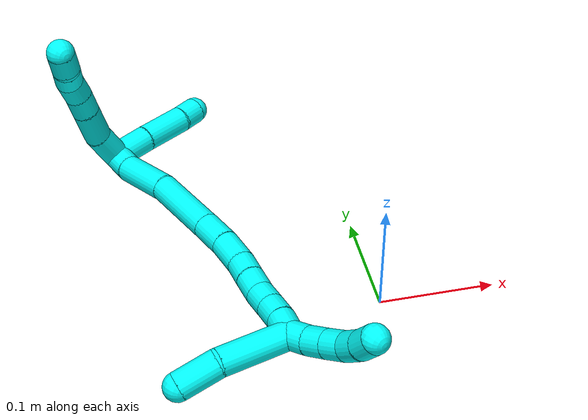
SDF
<sdf version="1.7">
 <world name="default">
  <model name="3">
   <static>0</static>
   <link name="3">
    <collision name="collision-cylinder-e_1_2_8">
     <pose>0.003912 -0.016648 0.000331 1.55092 0.230751 0.226249</pose>
     <geometry><cylinder><radius>0.0125</radius><length>0.03421</length></cylinder></geometry>
     <surface>
      <friction><ode><mu>1.16</mu><mu2>1.16</mu2><slip1>0</slip1><slip2>0</slip2></ode></friction>
      <contact><ode><kp>1e+06</kp><kd>1</kd><max_vel>0</max_vel><min_depth>0.001</min_depth></ode></contact>
     </surface>
    </collision>
    <visual name="visual-cylinder-e_1_2_8">
     <pose>0.003912 -0.016648 0.000331 1.55092 0.230751 0.226249</pose>
     <geometry><cylinder><radius>0.0125</radius><length>0.03421</length></cylinder></geometry>
     <material><ambient>0.003922 1 0.996078 1</ambient></material>
    </visual>
    <collision name="collision-cylinder-e_2_8_9">
     <pose>0.015133 -0.048801 -0.001003 1.67778 0.43831 0.486065</pose>
     <geometry><cylinder><radius>0.0125</radius><length>0.034443</length></cylinder></geometry>
     <surface>
      <friction><ode><mu>1.16</mu><mu2>1.16</mu2><slip1>0</slip1><slip2>0</slip2></ode></friction>
      <contact><ode><kp>1e+06</kp><kd>1</kd><max_vel>0</max_vel><min_depth>0.001</min_depth></ode></contact>
     </surface>
    </collision>
    <visual name="visual-cylinder-e_2_8_9">
     <pose>0.015133 -0.048801 -0.001003 1.67778 0.43831 0.486065</pose>
     <geometry><cylinder><radius>0.0125</radius><length>0.034443</length></cylinder></geometry>
     <material><ambient>0.003922 1 0.996078 1</ambient></material>
    </visual>
    <collision name="collision-cylinder-e_3_9_10">
     <pose>0.026951 -0.073304 -0.003239 1.6341 0.463643 0.492787</pose>
     <geometry><cylinder><radius>0.0125</radius><length>0.020163</length></cylinder></geometry>
     <surface>
      <friction><ode><mu>1.16</mu><mu2>1.16</mu2><slip1>0</slip1><slip2>0</slip2></ode></friction>
      <contact><ode><kp>1e+06</kp><kd>1</kd><max_vel>0</max_vel><min_depth>0.001</min_depth></ode></contact>
     </surface>
    </collision>
    <visual name="visual-cylinder-e_3_9_10">
     <pose>0.026951 -0.073304 -0.003239 1.6341 0.463643 0.492787</pose>
     <geometry><cylinder><radius>0.0125</radius><length>0.020163</length></cylinder></geometry>
     <material><ambient>0.003922 1 0.996078 1</ambient></material>
    </visual>
    <collision name="collision-cylinder-e_4_10_11">
     <pose>0.034941 -0.091816 -0.005056 1.70108 0.348115 0.395519</pose>
     <geometry><cylinder><radius>0.0125</radius><length>0.020413</length></cylinder></geometry>
     <surface>
      <friction><ode><mu>1.16</mu><mu2>1.16</mu2><slip1>0</slip1><slip2>0</slip2></ode></friction>
      <contact><ode><kp>1e+06</kp><kd>1</kd><max_vel>0</max_vel><min_depth>0.001</min_depth></ode></contact>
     </surface>
    </collision>
    <visual name="visual-cylinder-e_4_10_11">
     <pose>0.034941 -0.091816 -0.005056 1.70108 0.348115 0.395519</pose>
     <geometry><cylinder><radius>0.0125</radius><length>0.020413</length></cylinder></geometry>
     <material><ambient>0.003922 1 0.996078 1</ambient></material>
    </visual>
    <collision name="collision-cylinder-e_5_11_12">
     <pose>0.042161 -0.109577 -0.010735 2.06397 0.379828 0.622229</pose>
     <geometry><cylinder><radius>0.0125</radius><length>0.020165</length></cylinder></geometry>
     <surface>
      <friction><ode><mu>1.16</mu><mu2>1.16</mu2><slip1>0</slip1><slip2>0</slip2></ode></friction>
      <contact><ode><kp>1e+06</kp><kd>1</kd><max_vel>0</max_vel><min_depth>0.001</min_depth></ode></contact>
     </surface>
    </collision>
    <visual name="visual-cylinder-e_5_11_12">
     <pose>0.042161 -0.109577 -0.010735 2.06397 0.379828 0.622229</pose>
     <geometry><cylinder><radius>0.0125</radius><length>0.020165</length></cylinder></geometry>
     <material><ambient>0.003922 1 0.996078 1</ambient></material>
    </visual>
    <collision name="collision-cylinder-e_6_12_6">
     <pose>0.050859 -0.126644 -0.017116 1.78817 0.50224 0.618278</pose>
     <geometry><cylinder><radius>0.0125</radius><length>0.020606</length></cylinder></geometry>
     <surface>
      <friction><ode><mu>1.16</mu><mu2>1.16</mu2><slip1>0</slip1><slip2>0</slip2></ode></friction>
      <contact><ode><kp>1e+06</kp><kd>1</kd><max_vel>0</max_vel><min_depth>0.001</min_depth></ode></contact>
     </surface>
    </collision>
    <visual name="visual-cylinder-e_6_12_6">
     <pose>0.050859 -0.126644 -0.017116 1.78817 0.50224 0.618278</pose>
     <geometry><cylinder><radius>0.0125</radius><length>0.020606</length></cylinder></geometry>
     <material><ambient>0.003922 1 0.996078 1</ambient></material>
    </visual>
    <collision name="collision-cylinder-e_1_2_13">
     <pose>0.013621 0.010874 0.00145 -1.43821 0.892773 -0.793577</pose>
     <geometry><cylinder><radius>0.0125</radius><length>0.034979</length></cylinder></geometry>
     <surface>
      <friction><ode><mu>1.16</mu><mu2>1.16</mu2><slip1>0</slip1><slip2>0</slip2></ode></friction>
      <contact><ode><kp>1e+06</kp><kd>1</kd><max_vel>0</max_vel><min_depth>0.001</min_depth></ode></contact>
     </surface>
    </collision>
    <visual name="visual-cylinder-e_1_2_13">
     <pose>0.013621 0.010874 0.00145 -1.43821 0.892773 -0.793577</pose>
     <geometry><cylinder><radius>0.0125</radius><length>0.034979</length></cylinder></geometry>
     <material><ambient>0.003922 1 0.996078 1</ambient></material>
    </visual>
    <collision name="collision-cylinder-e_2_13_14">
     <pose>0.043814 0.03647 0.005174 -1.41761 0.838594 -0.730123</pose>
     <geometry><cylinder><radius>0.0125</radius><length>0.044567</length></cylinder></geometry>
     <surface>
      <friction><ode><mu>1.16</mu><mu2>1.16</mu2><slip1>0</slip1><slip2>0</slip2></ode></friction>
      <contact><ode><kp>1e+06</kp><kd>1</kd><max_vel>0</max_vel><min_depth>0.001</min_depth></ode></contact>
     </surface>
    </collision>
    <visual name="visual-cylinder-e_2_13_14">
     <pose>0.043814 0.03647 0.005174 -1.41761 0.838594 -0.730123</pose>
     <geometry><cylinder><radius>0.0125</radius><length>0.044567</length></cylinder></geometry>
     <material><ambient>0.003922 1 0.996078 1</ambient></material>
    </visual>
    <collision name="collision-cylinder-e_3_14_5">
     <pose>0.067693 0.057989 0.009688 -1.25228 0.795777 -0.590196</pose>
     <geometry><cylinder><radius>0.0125</radius><length>0.020454</length></cylinder></geometry>
     <surface>
      <friction><ode><mu>1.16</mu><mu2>1.16</mu2><slip1>0</slip1><slip2>0</slip2></ode></friction>
      <contact><ode><kp>1e+06</kp><kd>1</kd><max_vel>0</max_vel><min_depth>0.001</min_depth></ode></contact>
     </surface>
    </collision>
    <visual name="visual-cylinder-e_3_14_5">
     <pose>0.067693 0.057989 0.009688 -1.25228 0.795777 -0.590196</pose>
     <geometry><cylinder><radius>0.0125</radius><length>0.020454</length></cylinder></geometry>
     <material><ambient>0.003922 1 0.996078 1</ambient></material>
    </visual>
    <collision name="collision-cylinder-e_1_2_15">
     <pose>-0.001431 0.000303 -0.01174 -3.11579 -0.121261 2.72269</pose>
     <geometry><cylinder><radius>0.0125</radius><length>0.023662</length></cylinder></geometry>
     <surface>
      <friction><ode><mu>1.16</mu><mu2>1.16</mu2><slip1>0</slip1><slip2>0</slip2></ode></friction>
      <contact><ode><kp>1e+06</kp><kd>1</kd><max_vel>0</max_vel><min_depth>0.001</min_depth></ode></contact>
     </surface>
    </collision>
    <visual name="visual-cylinder-e_1_2_15">
     <pose>-0.001431 0.000303 -0.01174 -3.11579 -0.121261 2.72269</pose>
     <geometry><cylinder><radius>0.0125</radius><length>0.023662</length></cylinder></geometry>
     <material><ambient>0.003922 1 0.996078 1</ambient></material>
    </visual>
    <collision name="collision-cylinder-e_2_15_16">
     <pose>-0.00054 0.001535 -0.049166 -3.10545 0.090116 -2.37909</pose>
     <geometry><cylinder><radius>0.0125</radius><length>0.051614</length></cylinder></geometry>
     <surface>
      <friction><ode><mu>1.16</mu><mu2>1.16</mu2><slip1>0</slip1><slip2>0</slip2></ode></friction>
      <contact><ode><kp>1e+06</kp><kd>1</kd><max_vel>0</max_vel><min_depth>0.001</min_depth></ode></contact>
     </surface>
    </collision>
    <visual name="visual-cylinder-e_2_15_16">
     <pose>-0.00054 0.001535 -0.049166 -3.10545 0.090116 -2.37909</pose>
     <geometry><cylinder><radius>0.0125</radius><length>0.051614</length></cylinder></geometry>
     <material><ambient>0.003922 1 0.996078 1</ambient></material>
    </visual>
    <collision name="collision-cylinder-e_3_16_17">
     <pose>-0.000941 0.003971 -0.108325 -3.0966 -0.081115 2.129</pose>
     <geometry><cylinder><radius>0.0125</radius><length>0.067235</length></cylinder></geometry>
     <surface>
      <friction><ode><mu>1.16</mu><mu2>1.16</mu2><slip1>0</slip1><slip2>0</slip2></ode></friction>
      <contact><ode><kp>1e+06</kp><kd>1</kd><max_vel>0</max_vel><min_depth>0.001</min_depth></ode></contact>
     </surface>
    </collision>
    <visual name="visual-cylinder-e_3_16_17">
     <pose>-0.000941 0.003971 -0.108325 -3.0966 -0.081115 2.129</pose>
     <geometry><cylinder><radius>0.0125</radius><length>0.067235</length></cylinder></geometry>
     <material><ambient>0.003922 1 0.996078 1</ambient></material>
    </visual>
    <collision name="collision-cylinder-e_4_17_18">
     <pose>-0.005013 0.006076 -0.15596 -3.09943 -0.094834 2.30526</pose>
     <geometry><cylinder><radius>0.0125</radius><length>0.028477</length></cylinder></geometry>
     <surface>
      <friction><ode><mu>1.16</mu><mu2>1.16</mu2><slip1>0</slip1><slip2>0</slip2></ode></friction>
      <contact><ode><kp>1e+06</kp><kd>1</kd><max_vel>0</max_vel><min_depth>0.001</min_depth></ode></contact>
     </surface>
    </collision>
    <visual name="visual-cylinder-e_4_17_18">
     <pose>-0.005013 0.006076 -0.15596 -3.09943 -0.094834 2.30526</pose>
     <geometry><cylinder><radius>0.0125</radius><length>0.028477</length></cylinder></geometry>
     <material><ambient>0.003922 1 0.996078 1</ambient></material>
    </visual>
    <collision name="collision-cylinder-e_5_18_19">
     <pose>-0.00906 0.007101 -0.183834 -3.1104 -0.194174 2.82402</pose>
     <geometry><cylinder><radius>0.0125</radius><length>0.027964</length></cylinder></geometry>
     <surface>
      <friction><ode><mu>1.16</mu><mu2>1.16</mu2><slip1>0</slip1><slip2>0</slip2></ode></friction>
      <contact><ode><kp>1e+06</kp><kd>1</kd><max_vel>0</max_vel><min_depth>0.001</min_depth></ode></contact>
     </surface>
    </collision>
    <visual name="visual-cylinder-e_5_18_19">
     <pose>-0.00906 0.007101 -0.183834 -3.1104 -0.194174 2.82402</pose>
     <geometry><cylinder><radius>0.0125</radius><length>0.027964</length></cylinder></geometry>
     <material><ambient>0.003922 1 0.996078 1</ambient></material>
    </visual>
    <collision name="collision-cylinder-e_6_19_20">
     <pose>-0.014361 0.006246 -0.207497 3.01343 -0.253903 -2.20989</pose>
     <geometry><cylinder><radius>0.0125</radius><length>0.020731</length></cylinder></geometry>
     <surface>
      <friction><ode><mu>1.16</mu><mu2>1.16</mu2><slip1>0</slip1><slip2>0</slip2></ode></friction>
      <contact><ode><kp>1e+06</kp><kd>1</kd><max_vel>0</max_vel><min_depth>0.001</min_depth></ode></contact>
     </surface>
    </collision>
    <visual name="visual-cylinder-e_6_19_20">
     <pose>-0.014361 0.006246 -0.207497 3.01343 -0.253903 -2.20989</pose>
     <geometry><cylinder><radius>0.0125</radius><length>0.020731</length></cylinder></geometry>
     <material><ambient>0.003922 1 0.996078 1</ambient></material>
    </visual>
    <collision name="collision-cylinder-e_7_20_21">
     <pose>-0.019648 0.004461 -0.227137 3.08975 -0.269802 -2.76409</pose>
     <geometry><cylinder><radius>0.0125</radius><length>0.020131</length></cylinder></geometry>
     <surface>
      <friction><ode><mu>1.16</mu><mu2>1.16</mu2><slip1>0</slip1><slip2>0</slip2></ode></friction>
      <contact><ode><kp>1e+06</kp><kd>1</kd><max_vel>0</max_vel><min_depth>0.001</min_depth></ode></contact>
     </surface>
    </collision>
    <visual name="visual-cylinder-e_7_20_21">
     <pose>-0.019648 0.004461 -0.227137 3.08975 -0.269802 -2.76409</pose>
     <geometry><cylinder><radius>0.0125</radius><length>0.020131</length></cylinder></geometry>
     <material><ambient>0.003922 1 0.996078 1</ambient></material>
    </visual>
    <collision name="collision-cylinder-e_8_21_22">
     <pose>-0.02368 0.002449 -0.246682 2.98962 -0.134518 -1.44865</pose>
     <geometry><cylinder><radius>0.0125</radius><length>0.020125</length></cylinder></geometry>
     <surface>
      <friction><ode><mu>1.16</mu><mu2>1.16</mu2><slip1>0</slip1><slip2>0</slip2></ode></friction>
      <contact><ode><kp>1e+06</kp><kd>1</kd><max_vel>0</max_vel><min_depth>0.001</min_depth></ode></contact>
     </surface>
    </collision>
    <visual name="visual-cylinder-e_8_21_22">
     <pose>-0.02368 0.002449 -0.246682 2.98962 -0.134518 -1.44865</pose>
     <geometry><cylinder><radius>0.0125</radius><length>0.020125</length></cylinder></geometry>
     <material><ambient>0.003922 1 0.996078 1</ambient></material>
    </visual>
    <collision name="collision-cylinder-e_9_22_23">
     <pose>-0.02633 -0.001019 -0.266283 2.94324 -0.130075 -1.15913</pose>
     <geometry><cylinder><radius>0.0125</radius><length>0.020049</length></cylinder></geometry>
     <surface>
      <friction><ode><mu>1.16</mu><mu2>1.16</mu2><slip1>0</slip1><slip2>0</slip2></ode></friction>
      <contact><ode><kp>1e+06</kp><kd>1</kd><max_vel>0</max_vel><min_depth>0.001</min_depth></ode></contact>
     </surface>
    </collision>
    <visual name="visual-cylinder-e_9_22_23">
     <pose>-0.02633 -0.001019 -0.266283 2.94324 -0.130075 -1.15913</pose>
     <geometry><cylinder><radius>0.0125</radius><length>0.020049</length></cylinder></geometry>
     <material><ambient>0.003922 1 0.996078 1</ambient></material>
    </visual>
    <collision name="collision-cylinder-e_10_23_1">
     <pose>-0.030093 -0.005151 -0.28548 2.91566 -0.248676 -1.66746</pose>
     <geometry><cylinder><radius>0.0125</radius><length>0.020012</length></cylinder></geometry>
     <surface>
      <friction><ode><mu>1.16</mu><mu2>1.16</mu2><slip1>0</slip1><slip2>0</slip2></ode></friction>
      <contact><ode><kp>1e+06</kp><kd>1</kd><max_vel>0</max_vel><min_depth>0.001</min_depth></ode></contact>
     </surface>
    </collision>
    <visual name="visual-cylinder-e_10_23_1">
     <pose>-0.030093 -0.005151 -0.28548 2.91566 -0.248676 -1.66746</pose>
     <geometry><cylinder><radius>0.0125</radius><length>0.020012</length></cylinder></geometry>
     <material><ambient>0.003922 1 0.996078 1</ambient></material>
    </visual>
    <collision name="collision-cylinder-e_1_1_24">
     <pose>-0.029708 -0.00702 -0.304513 -3.10995 0.288701 -2.92474</pose>
     <geometry><cylinder><radius>0.0125</radius><length>0.02</length></cylinder></geometry>
     <surface>
      <friction><ode><mu>1.16</mu><mu2>1.16</mu2><slip1>0</slip1><slip2>0</slip2></ode></friction>
      <contact><ode><kp>1e+06</kp><kd>1</kd><max_vel>0</max_vel><min_depth>0.001</min_depth></ode></contact>
     </surface>
    </collision>
    <visual name="visual-cylinder-e_1_1_24">
     <pose>-0.029708 -0.00702 -0.304513 -3.10995 0.288701 -2.92474</pose>
     <geometry><cylinder><radius>0.0125</radius><length>0.02</length></cylinder></geometry>
     <material><ambient>0.003922 1 0.996078 1</ambient></material>
    </visual>
    <collision name="collision-cylinder-e_2_24_25">
     <pose>-0.023173 -0.007428 -0.323362 3.06496 0.377734 2.74573</pose>
     <geometry><cylinder><radius>0.0125</radius><length>0.02</length></cylinder></geometry>
     <surface>
      <friction><ode><mu>1.16</mu><mu2>1.16</mu2><slip1>0</slip1><slip2>0</slip2></ode></friction>
      <contact><ode><kp>1e+06</kp><kd>1</kd><max_vel>0</max_vel><min_depth>0.001</min_depth></ode></contact>
     </surface>
    </collision>
    <visual name="visual-cylinder-e_2_24_25">
     <pose>-0.023173 -0.007428 -0.323362 3.06496 0.377734 2.74573</pose>
     <geometry><cylinder><radius>0.0125</radius><length>0.02</length></cylinder></geometry>
     <material><ambient>0.003922 1 0.996078 1</ambient></material>
    </visual>
    <collision name="collision-cylinder-e_3_25_26">
     <pose>-0.015686 -0.009419 -0.341791 3.00283 0.389717 2.46448</pose>
     <geometry><cylinder><radius>0.0125</radius><length>0.02</length></cylinder></geometry>
     <surface>
      <friction><ode><mu>1.16</mu><mu2>1.16</mu2><slip1>0</slip1><slip2>0</slip2></ode></friction>
      <contact><ode><kp>1e+06</kp><kd>1</kd><max_vel>0</max_vel><min_depth>0.001</min_depth></ode></contact>
     </surface>
    </collision>
    <visual name="visual-cylinder-e_3_25_26">
     <pose>-0.015686 -0.009419 -0.341791 3.00283 0.389717 2.46448</pose>
     <geometry><cylinder><radius>0.0125</radius><length>0.02</length></cylinder></geometry>
     <material><ambient>0.003922 1 0.996078 1</ambient></material>
    </visual>
    <collision name="collision-cylinder-e_4_26_27">
     <pose>-0.007689 -0.014729 -0.359085 2.68149 0.433171 1.50848</pose>
     <geometry><cylinder><radius>0.0125</radius><length>0.02</length></cylinder></geometry>
     <surface>
      <friction><ode><mu>1.16</mu><mu2>1.16</mu2><slip1>0</slip1><slip2>0</slip2></ode></friction>
      <contact><ode><kp>1e+06</kp><kd>1</kd><max_vel>0</max_vel><min_depth>0.001</min_depth></ode></contact>
     </surface>
    </collision>
    <visual name="visual-cylinder-e_4_26_27">
     <pose>-0.007689 -0.014729 -0.359085 2.68149 0.433171 1.50848</pose>
     <geometry><cylinder><radius>0.0125</radius><length>0.02</length></cylinder></geometry>
     <material><ambient>0.003922 1 0.996078 1</ambient></material>
    </visual>
    <collision name="collision-cylinder-e_5_27_4">
     <pose>0.001887 -0.023529 -0.374169 2.54024 0.567842 1.51009</pose>
     <geometry><cylinder><radius>0.0125</radius><length>0.02</length></cylinder></geometry>
     <surface>
      <friction><ode><mu>1.16</mu><mu2>1.16</mu2><slip1>0</slip1><slip2>0</slip2></ode></friction>
      <contact><ode><kp>1e+06</kp><kd>1</kd><max_vel>0</max_vel><min_depth>0.001</min_depth></ode></contact>
     </surface>
    </collision>
    <visual name="visual-cylinder-e_5_27_4">
     <pose>0.001887 -0.023529 -0.374169 2.54024 0.567842 1.51009</pose>
     <geometry><cylinder><radius>0.0125</radius><length>0.02</length></cylinder></geometry>
     <material><ambient>0.003922 1 0.996078 1</ambient></material>
    </visual>
    <collision name="collision-cylinder-e_1_1_28">
     <pose>-0.05605 -0.027198 -0.28811 1.24017 -0.841083 -0.618195</pose>
     <geometry><cylinder><radius>0.0125</radius><length>0.063041</length></cylinder></geometry>
     <surface>
      <friction><ode><mu>1.16</mu><mu2>1.16</mu2><slip1>0</slip1><slip2>0</slip2></ode></friction>
      <contact><ode><kp>1e+06</kp><kd>1</kd><max_vel>0</max_vel><min_depth>0.001</min_depth></ode></contact>
     </surface>
    </collision>
    <visual name="visual-cylinder-e_1_1_28">
     <pose>-0.05605 -0.027198 -0.28811 1.24017 -0.841083 -0.618195</pose>
     <geometry><cylinder><radius>0.0125</radius><length>0.063041</length></cylinder></geometry>
     <material><ambient>0.003922 1 0.996078 1</ambient></material>
    </visual>
    <collision name="collision-cylinder-e_2_28_3">
     <pose>-0.095776 -0.054557 -0.276597 1.01083 -1.07251 -0.635488</pose>
     <geometry><cylinder><radius>0.0125</radius><length>0.036959</length></cylinder></geometry>
     <surface>
      <friction><ode><mu>1.16</mu><mu2>1.16</mu2><slip1>0</slip1><slip2>0</slip2></ode></friction>
      <contact><ode><kp>1e+06</kp><kd>1</kd><max_vel>0</max_vel><min_depth>0.001</min_depth></ode></contact>
     </surface>
    </collision>
    <visual name="visual-cylinder-e_2_28_3">
     <pose>-0.095776 -0.054557 -0.276597 1.01083 -1.07251 -0.635488</pose>
     <geometry><cylinder><radius>0.0125</radius><length>0.036959</length></cylinder></geometry>
     <material><ambient>0.003922 1 0.996078 1</ambient></material>
    </visual>
    <collision name="collision-sphere-3">
     <pose>-0.112009 -0.06204 -0.271906 0 -0 0</pose>
     <geometry><sphere><radius>0.0125</radius></sphere></geometry>
     <surface>
      <friction><ode><mu>1.16</mu><mu2>1.16</mu2><slip1>0</slip1><slip2>0</slip2></ode></friction>
      <contact><ode><kp>1e+06</kp><kd>1</kd><max_vel>0</max_vel><min_depth>0.001</min_depth></ode></contact>
     </surface>
    </collision>
    <visual name="visual-sphere-3">
     <pose>-0.112009 -0.06204 -0.271906 0 -0 0</pose>
     <geometry><sphere><radius>0.0125</radius></sphere></geometry>
     <material><ambient>0.003922 1 0.996078 1</ambient></material>
    </visual>
    <collision name="collision-sphere-28">
     <pose>-0.079544 -0.047074 -0.281288 0 -0 0</pose>
     <geometry><sphere><radius>0.0125</radius></sphere></geometry>
     <surface>
      <friction><ode><mu>1.16</mu><mu2>1.16</mu2><slip1>0</slip1><slip2>0</slip2></ode></friction>
      <contact><ode><kp>1e+06</kp><kd>1</kd><max_vel>0</max_vel><min_depth>0.001</min_depth></ode></contact>
     </surface>
    </collision>
    <visual name="visual-sphere-28">
     <pose>-0.079544 -0.047074 -0.281288 0 -0 0</pose>
     <geometry><sphere><radius>0.0125</radius></sphere></geometry>
     <material><ambient>0.003922 1 0.996078 1</ambient></material>
    </visual>
    <collision name="collision-sphere-4">
     <pose>0.007265 -0.028299 -0.381121 0 -0 0</pose>
     <geometry><sphere><radius>0.0125</radius></sphere></geometry>
     <surface>
      <friction><ode><mu>1.16</mu><mu2>1.16</mu2><slip1>0</slip1><slip2>0</slip2></ode></friction>
      <contact><ode><kp>1e+06</kp><kd>1</kd><max_vel>0</max_vel><min_depth>0.001</min_depth></ode></contact>
     </surface>
    </collision>
    <visual name="visual-sphere-4">
     <pose>0.007265 -0.028299 -0.381121 0 -0 0</pose>
     <geometry><sphere><radius>0.0125</radius></sphere></geometry>
     <material><ambient>0.003922 1 0.996078 1</ambient></material>
    </visual>
    <collision name="collision-sphere-27">
     <pose>-0.003491 -0.018759 -0.367217 0 -0 0</pose>
     <geometry><sphere><radius>0.0125</radius></sphere></geometry>
     <surface>
      <friction><ode><mu>1.16</mu><mu2>1.16</mu2><slip1>0</slip1><slip2>0</slip2></ode></friction>
      <contact><ode><kp>1e+06</kp><kd>1</kd><max_vel>0</max_vel><min_depth>0.001</min_depth></ode></contact>
     </surface>
    </collision>
    <visual name="visual-sphere-27">
     <pose>-0.003491 -0.018759 -0.367217 0 -0 0</pose>
     <geometry><sphere><radius>0.0125</radius></sphere></geometry>
     <material><ambient>0.003922 1 0.996078 1</ambient></material>
    </visual>
    <collision name="collision-sphere-26">
     <pose>-0.011886 -0.010699 -0.350952 0 -0 0</pose>
     <geometry><sphere><radius>0.0125</radius></sphere></geometry>
     <surface>
      <friction><ode><mu>1.16</mu><mu2>1.16</mu2><slip1>0</slip1><slip2>0</slip2></ode></friction>
      <contact><ode><kp>1e+06</kp><kd>1</kd><max_vel>0</max_vel><min_depth>0.001</min_depth></ode></contact>
     </surface>
    </collision>
    <visual name="visual-sphere-26">
     <pose>-0.011886 -0.010699 -0.350952 0 -0 0</pose>
     <geometry><sphere><radius>0.0125</radius></sphere></geometry>
     <material><ambient>0.003922 1 0.996078 1</ambient></material>
    </visual>
    <collision name="collision-sphere-25">
     <pose>-0.019485 -0.00814 -0.33263 0 -0 0</pose>
     <geometry><sphere><radius>0.0125</radius></sphere></geometry>
     <surface>
      <friction><ode><mu>1.16</mu><mu2>1.16</mu2><slip1>0</slip1><slip2>0</slip2></ode></friction>
      <contact><ode><kp>1e+06</kp><kd>1</kd><max_vel>0</max_vel><min_depth>0.001</min_depth></ode></contact>
     </surface>
    </collision>
    <visual name="visual-sphere-25">
     <pose>-0.019485 -0.00814 -0.33263 0 -0 0</pose>
     <geometry><sphere><radius>0.0125</radius></sphere></geometry>
     <material><ambient>0.003922 1 0.996078 1</ambient></material>
    </visual>
    <collision name="collision-sphere-24">
     <pose>-0.026861 -0.006717 -0.314094 0 -0 0</pose>
     <geometry><sphere><radius>0.0125</radius></sphere></geometry>
     <surface>
      <friction><ode><mu>1.16</mu><mu2>1.16</mu2><slip1>0</slip1><slip2>0</slip2></ode></friction>
      <contact><ode><kp>1e+06</kp><kd>1</kd><max_vel>0</max_vel><min_depth>0.001</min_depth></ode></contact>
     </surface>
    </collision>
    <visual name="visual-sphere-24">
     <pose>-0.026861 -0.006717 -0.314094 0 -0 0</pose>
     <geometry><sphere><radius>0.0125</radius></sphere></geometry>
     <material><ambient>0.003922 1 0.996078 1</ambient></material>
    </visual>
    <collision name="collision-sphere-1">
     <pose>-0.032555 -0.007323 -0.294932 0 -0 0</pose>
     <geometry><sphere><radius>0.0125</radius></sphere></geometry>
     <surface>
      <friction><ode><mu>1.16</mu><mu2>1.16</mu2><slip1>0</slip1><slip2>0</slip2></ode></friction>
      <contact><ode><kp>1e+06</kp><kd>1</kd><max_vel>0</max_vel><min_depth>0.001</min_depth></ode></contact>
     </surface>
    </collision>
    <visual name="visual-sphere-1">
     <pose>-0.032555 -0.007323 -0.294932 0 -0 0</pose>
     <geometry><sphere><radius>0.0125</radius></sphere></geometry>
     <material><ambient>0.003922 1 0.996078 1</ambient></material>
    </visual>
    <collision name="collision-sphere-23">
     <pose>-0.02763 -0.002978 -0.276028 0 -0 0</pose>
     <geometry><sphere><radius>0.0125</radius></sphere></geometry>
     <surface>
      <friction><ode><mu>1.16</mu><mu2>1.16</mu2><slip1>0</slip1><slip2>0</slip2></ode></friction>
      <contact><ode><kp>1e+06</kp><kd>1</kd><max_vel>0</max_vel><min_depth>0.001</min_depth></ode></contact>
     </surface>
    </collision>
    <visual name="visual-sphere-23">
     <pose>-0.02763 -0.002978 -0.276028 0 -0 0</pose>
     <geometry><sphere><radius>0.0125</radius></sphere></geometry>
     <material><ambient>0.003922 1 0.996078 1</ambient></material>
    </visual>
    <collision name="collision-sphere-22">
     <pose>-0.02503 0.000939 -0.256539 0 -0 0</pose>
     <geometry><sphere><radius>0.0125</radius></sphere></geometry>
     <surface>
      <friction><ode><mu>1.16</mu><mu2>1.16</mu2><slip1>0</slip1><slip2>0</slip2></ode></friction>
      <contact><ode><kp>1e+06</kp><kd>1</kd><max_vel>0</max_vel><min_depth>0.001</min_depth></ode></contact>
     </surface>
    </collision>
    <visual name="visual-sphere-22">
     <pose>-0.02503 0.000939 -0.256539 0 -0 0</pose>
     <geometry><sphere><radius>0.0125</radius></sphere></geometry>
     <material><ambient>0.003922 1 0.996078 1</ambient></material>
    </visual>
    <collision name="collision-sphere-21">
     <pose>-0.02233 0.003959 -0.236825 0 -0 0</pose>
     <geometry><sphere><radius>0.0125</radius></sphere></geometry>
     <surface>
      <friction><ode><mu>1.16</mu><mu2>1.16</mu2><slip1>0</slip1><slip2>0</slip2></ode></friction>
      <contact><ode><kp>1e+06</kp><kd>1</kd><max_vel>0</max_vel><min_depth>0.001</min_depth></ode></contact>
     </surface>
    </collision>
    <visual name="visual-sphere-21">
     <pose>-0.02233 0.003959 -0.236825 0 -0 0</pose>
     <geometry><sphere><radius>0.0125</radius></sphere></geometry>
     <material><ambient>0.003922 1 0.996078 1</ambient></material>
    </visual>
    <collision name="collision-sphere-12">
     <pose>0.045899 -0.117825 -0.015168 0 -0 0</pose>
     <geometry><sphere><radius>0.0125</radius></sphere></geometry>
     <surface>
      <friction><ode><mu>1.16</mu><mu2>1.16</mu2><slip1>0</slip1><slip2>0</slip2></ode></friction>
      <contact><ode><kp>1e+06</kp><kd>1</kd><max_vel>0</max_vel><min_depth>0.001</min_depth></ode></contact>
     </surface>
    </collision>
    <visual name="visual-sphere-12">
     <pose>0.045899 -0.117825 -0.015168 0 -0 0</pose>
     <geometry><sphere><radius>0.0125</radius></sphere></geometry>
     <material><ambient>0.003922 1 0.996078 1</ambient></material>
    </visual>
    <collision name="collision-sphere-11">
     <pose>0.038422 -0.101329 -0.006302 0 -0 0</pose>
     <geometry><sphere><radius>0.0125</radius></sphere></geometry>
     <surface>
      <friction><ode><mu>1.16</mu><mu2>1.16</mu2><slip1>0</slip1><slip2>0</slip2></ode></friction>
      <contact><ode><kp>1e+06</kp><kd>1</kd><max_vel>0</max_vel><min_depth>0.001</min_depth></ode></contact>
     </surface>
    </collision>
    <visual name="visual-sphere-11">
     <pose>0.038422 -0.101329 -0.006302 0 -0 0</pose>
     <geometry><sphere><radius>0.0125</radius></sphere></geometry>
     <material><ambient>0.003922 1 0.996078 1</ambient></material>
    </visual>
    <collision name="collision-sphere-10">
     <pose>0.031459 -0.082303 -0.003809 0 -0 0</pose>
     <geometry><sphere><radius>0.0125</radius></sphere></geometry>
     <surface>
      <friction><ode><mu>1.16</mu><mu2>1.16</mu2><slip1>0</slip1><slip2>0</slip2></ode></friction>
      <contact><ode><kp>1e+06</kp><kd>1</kd><max_vel>0</max_vel><min_depth>0.001</min_depth></ode></contact>
     </surface>
    </collision>
    <visual name="visual-sphere-10">
     <pose>0.031459 -0.082303 -0.003809 0 -0 0</pose>
     <geometry><sphere><radius>0.0125</radius></sphere></geometry>
     <material><ambient>0.003922 1 0.996078 1</ambient></material>
    </visual>
    <collision name="collision-sphere-9">
     <pose>0.022442 -0.064305 -0.002668 0 -0 0</pose>
     <geometry><sphere><radius>0.0125</radius></sphere></geometry>
     <surface>
      <friction><ode><mu>1.16</mu><mu2>1.16</mu2><slip1>0</slip1><slip2>0</slip2></ode></friction>
      <contact><ode><kp>1e+06</kp><kd>1</kd><max_vel>0</max_vel><min_depth>0.001</min_depth></ode></contact>
     </surface>
    </collision>
    <visual name="visual-sphere-9">
     <pose>0.022442 -0.064305 -0.002668 0 -0 0</pose>
     <geometry><sphere><radius>0.0125</radius></sphere></geometry>
     <material><ambient>0.003922 1 0.996078 1</ambient></material>
    </visual>
    <collision name="collision-sphere-2">
     <geometry><sphere><radius>0.0125</radius></sphere></geometry>
     <surface>
      <friction><ode><mu>1.16</mu><mu2>1.16</mu2><slip1>0</slip1><slip2>0</slip2></ode></friction>
      <contact><ode><kp>1e+06</kp><kd>1</kd><max_vel>0</max_vel><min_depth>0.001</min_depth></ode></contact>
     </surface>
    </collision>
    <visual name="visual-sphere-2">
     <geometry><sphere><radius>0.0125</radius></sphere></geometry>
     <material><ambient>0.003922 1 0.996078 1</ambient></material>
    </visual>
    <collision name="collision-sphere-19">
     <pose>-0.011757 0.007529 -0.197547 0 -0 0</pose>
     <geometry><sphere><radius>0.0125</radius></sphere></geometry>
     <surface>
      <friction><ode><mu>1.16</mu><mu2>1.16</mu2><slip1>0</slip1><slip2>0</slip2></ode></friction>
      <contact><ode><kp>1e+06</kp><kd>1</kd><max_vel>0</max_vel><min_depth>0.001</min_depth></ode></contact>
     </surface>
    </collision>
    <visual name="visual-sphere-19">
     <pose>-0.011757 0.007529 -0.197547 0 -0 0</pose>
     <geometry><sphere><radius>0.0125</radius></sphere></geometry>
     <material><ambient>0.003922 1 0.996078 1</ambient></material>
    </visual>
    <collision name="collision-sphere-8">
     <pose>0.007824 -0.033296 0.000662 0 -0 0</pose>
     <geometry><sphere><radius>0.0125</radius></sphere></geometry>
     <surface>
      <friction><ode><mu>1.16</mu><mu2>1.16</mu2><slip1>0</slip1><slip2>0</slip2></ode></friction>
      <contact><ode><kp>1e+06</kp><kd>1</kd><max_vel>0</max_vel><min_depth>0.001</min_depth></ode></contact>
     </surface>
    </collision>
    <visual name="visual-sphere-8">
     <pose>0.007824 -0.033296 0.000662 0 -0 0</pose>
     <geometry><sphere><radius>0.0125</radius></sphere></geometry>
     <material><ambient>0.003922 1 0.996078 1</ambient></material>
    </visual>
    <collision name="collision-sphere-6">
     <pose>0.055819 -0.135462 -0.019064 0 -0 0</pose>
     <geometry><sphere><radius>0.0125</radius></sphere></geometry>
     <surface>
      <friction><ode><mu>1.16</mu><mu2>1.16</mu2><slip1>0</slip1><slip2>0</slip2></ode></friction>
      <contact><ode><kp>1e+06</kp><kd>1</kd><max_vel>0</max_vel><min_depth>0.001</min_depth></ode></contact>
     </surface>
    </collision>
    <visual name="visual-sphere-6">
     <pose>0.055819 -0.135462 -0.019064 0 -0 0</pose>
     <geometry><sphere><radius>0.0125</radius></sphere></geometry>
     <material><ambient>0.003922 1 0.996078 1</ambient></material>
    </visual>
    <collision name="collision-sphere-13">
     <pose>0.027242 0.021748 0.002901 0 -0 0</pose>
     <geometry><sphere><radius>0.0125</radius></sphere></geometry>
     <surface>
      <friction><ode><mu>1.16</mu><mu2>1.16</mu2><slip1>0</slip1><slip2>0</slip2></ode></friction>
      <contact><ode><kp>1e+06</kp><kd>1</kd><max_vel>0</max_vel><min_depth>0.001</min_depth></ode></contact>
     </surface>
    </collision>
    <visual name="visual-sphere-13">
     <pose>0.027242 0.021748 0.002901 0 -0 0</pose>
     <geometry><sphere><radius>0.0125</radius></sphere></geometry>
     <material><ambient>0.003922 1 0.996078 1</ambient></material>
    </visual>
    <collision name="collision-sphere-14">
     <pose>0.060387 0.051193 0.007447 0 -0 0</pose>
     <geometry><sphere><radius>0.0125</radius></sphere></geometry>
     <surface>
      <friction><ode><mu>1.16</mu><mu2>1.16</mu2><slip1>0</slip1><slip2>0</slip2></ode></friction>
      <contact><ode><kp>1e+06</kp><kd>1</kd><max_vel>0</max_vel><min_depth>0.001</min_depth></ode></contact>
     </surface>
    </collision>
    <visual name="visual-sphere-14">
     <pose>0.060387 0.051193 0.007447 0 -0 0</pose>
     <geometry><sphere><radius>0.0125</radius></sphere></geometry>
     <material><ambient>0.003922 1 0.996078 1</ambient></material>
    </visual>
    <collision name="collision-sphere-5">
     <pose>0.074999 0.064785 0.011929 0 -0 0</pose>
     <geometry><sphere><radius>0.0125</radius></sphere></geometry>
     <surface>
      <friction><ode><mu>1.16</mu><mu2>1.16</mu2><slip1>0</slip1><slip2>0</slip2></ode></friction>
      <contact><ode><kp>1e+06</kp><kd>1</kd><max_vel>0</max_vel><min_depth>0.001</min_depth></ode></contact>
     </surface>
    </collision>
    <visual name="visual-sphere-5">
     <pose>0.074999 0.064785 0.011929 0 -0 0</pose>
     <geometry><sphere><radius>0.0125</radius></sphere></geometry>
     <material><ambient>0.003922 1 0.996078 1</ambient></material>
    </visual>
    <collision name="collision-sphere-15">
     <pose>-0.002862 0.000606 -0.023481 0 -0 0</pose>
     <geometry><sphere><radius>0.0125</radius></sphere></geometry>
     <surface>
      <friction><ode><mu>1.16</mu><mu2>1.16</mu2><slip1>0</slip1><slip2>0</slip2></ode></friction>
      <contact><ode><kp>1e+06</kp><kd>1</kd><max_vel>0</max_vel><min_depth>0.001</min_depth></ode></contact>
     </surface>
    </collision>
    <visual name="visual-sphere-15">
     <pose>-0.002862 0.000606 -0.023481 0 -0 0</pose>
     <geometry><sphere><radius>0.0125</radius></sphere></geometry>
     <material><ambient>0.003922 1 0.996078 1</ambient></material>
    </visual>
    <collision name="collision-sphere-16">
     <pose>0.001783 0.002464 -0.074852 0 -0 0</pose>
     <geometry><sphere><radius>0.0125</radius></sphere></geometry>
     <surface>
      <friction><ode><mu>1.16</mu><mu2>1.16</mu2><slip1>0</slip1><slip2>0</slip2></ode></friction>
      <contact><ode><kp>1e+06</kp><kd>1</kd><max_vel>0</max_vel><min_depth>0.001</min_depth></ode></contact>
     </surface>
    </collision>
    <visual name="visual-sphere-16">
     <pose>0.001783 0.002464 -0.074852 0 -0 0</pose>
     <geometry><sphere><radius>0.0125</radius></sphere></geometry>
     <material><ambient>0.003922 1 0.996078 1</ambient></material>
    </visual>
    <collision name="collision-sphere-17">
     <pose>-0.003665 0.005478 -0.141798 0 -0 0</pose>
     <geometry><sphere><radius>0.0125</radius></sphere></geometry>
     <surface>
      <friction><ode><mu>1.16</mu><mu2>1.16</mu2><slip1>0</slip1><slip2>0</slip2></ode></friction>
      <contact><ode><kp>1e+06</kp><kd>1</kd><max_vel>0</max_vel><min_depth>0.001</min_depth></ode></contact>
     </surface>
    </collision>
    <visual name="visual-sphere-17">
     <pose>-0.003665 0.005478 -0.141798 0 -0 0</pose>
     <geometry><sphere><radius>0.0125</radius></sphere></geometry>
     <material><ambient>0.003922 1 0.996078 1</ambient></material>
    </visual>
    <collision name="collision-sphere-18">
     <pose>-0.006362 0.006673 -0.170122 0 -0 0</pose>
     <geometry><sphere><radius>0.0125</radius></sphere></geometry>
     <surface>
      <friction><ode><mu>1.16</mu><mu2>1.16</mu2><slip1>0</slip1><slip2>0</slip2></ode></friction>
      <contact><ode><kp>1e+06</kp><kd>1</kd><max_vel>0</max_vel><min_depth>0.001</min_depth></ode></contact>
     </surface>
    </collision>
    <visual name="visual-sphere-18">
     <pose>-0.006362 0.006673 -0.170122 0 -0 0</pose>
     <geometry><sphere><radius>0.0125</radius></sphere></geometry>
     <material><ambient>0.003922 1 0.996078 1</ambient></material>
    </visual>
    <collision name="collision-sphere-20">
     <pose>-0.016965 0.004964 -0.217448 0 -0 0</pose>
     <geometry><sphere><radius>0.0125</radius></sphere></geometry>
     <surface>
      <friction><ode><mu>1.16</mu><mu2>1.16</mu2><slip1>0</slip1><slip2>0</slip2></ode></friction>
      <contact><ode><kp>1e+06</kp><kd>1</kd><max_vel>0</max_vel><min_depth>0.001</min_depth></ode></contact>
     </surface>
    </collision>
    <visual name="visual-sphere-20">
     <pose>-0.016965 0.004964 -0.217448 0 -0 0</pose>
     <geometry><sphere><radius>0.0125</radius></sphere></geometry>
     <material><ambient>0.003922 1 0.996078 1</ambient></material>
    </visual>
    <inertial>
     <pose>-0.005011 -0.015111 -0.143062 0 -0 0</pose>
     <mass>0.75</mass>
     <inertia><ixx>8e-06</ixx><ixy>0</ixy><ixz>0</ixz><iyy>6.1e-05</iyy><iyz>0</iyz><izz>-1e-06</izz></inertia>
    </inertial>
   </link>
   <pose>-0.194268 0.232575 0.012082 -1.70645 -0.723935 0.551088</pose>
  </model>
 </world>
</sdf>
